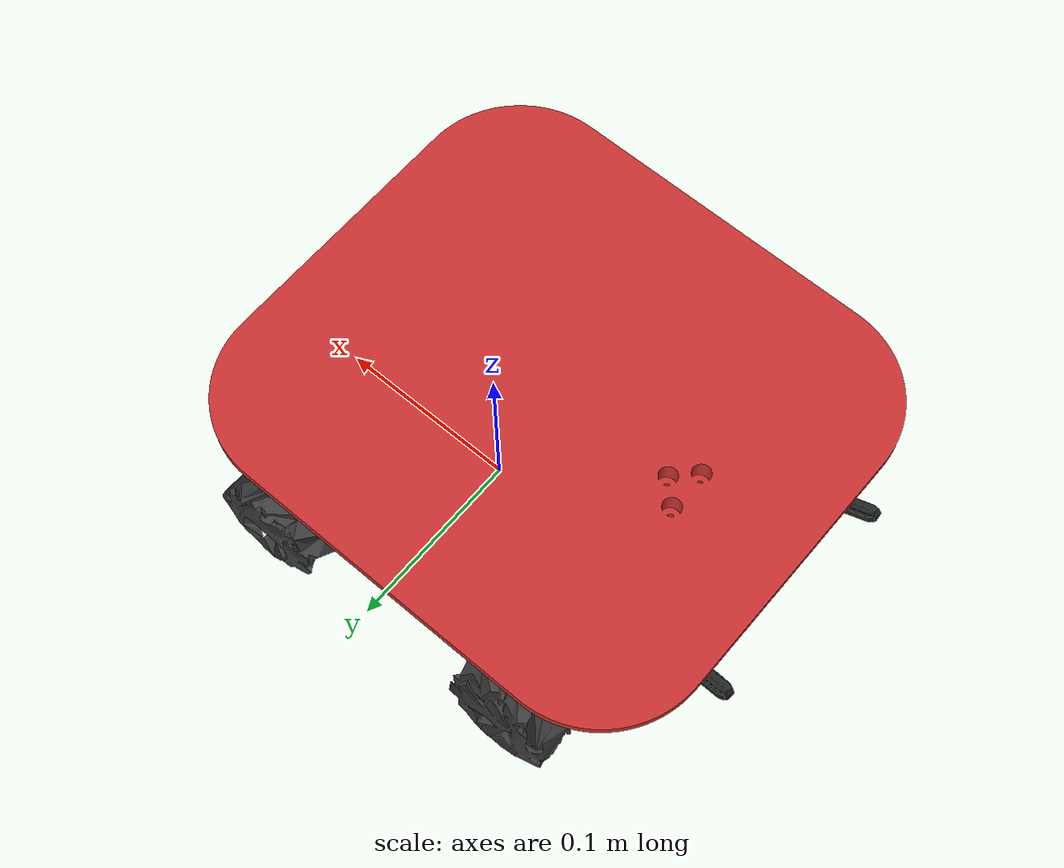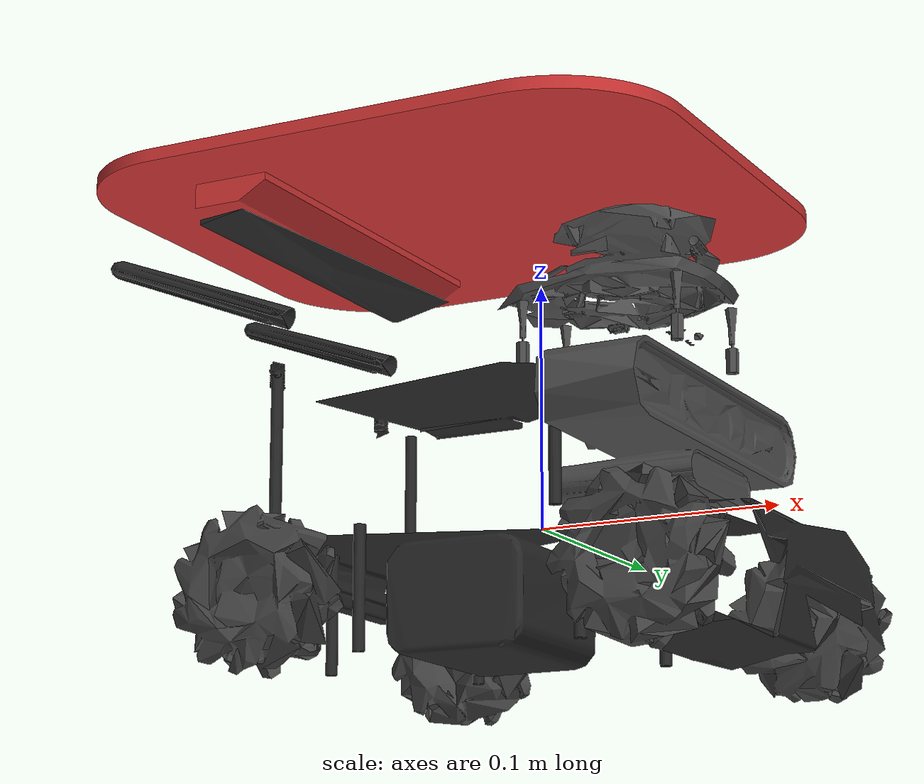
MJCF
<mujoco model="rosmaster_x3">
  <compiler meshdir="meshes" angle="radian"/>

  <asset>
    <mesh name="base"       file="base_link_X3_bracket_only.STL"/>
    <mesh name="wheel_fl"   file="front_left_wheel_X3.STL"/>
    <mesh name="wheel_fr"   file="front_right_wheel_X3.STL"/>
    <mesh name="wheel_bl"   file="back_left_wheel_X3.STL"/>
    <mesh name="wheel_br"   file="back_right_wheel_X3.STL"/>
    <mesh name="camera"     file="camera_link.STL"/>
    <mesh name="laser"      file="laser_link.STL"/>
    <mesh name="pad_mesh"   file="landing_pad.STL"/>

    <material name="chassis"    rgba="0.15 0.15 0.15 1"/>
    <material name="wheel"      rgba="0.25 0.25 0.25 1"/>
    <material name="pad"        rgba="0.8 0.2 0.2 1"/>
    <material name="sensor"     rgba="0.3 0.3 0.3 1"/>
  </asset>

  <worldbody>
    <body name="rover" pos="0 0 0">
      <inertial pos="-0.031 0 0.107" mass="4.6"
                diaginertia="0.03 0.04 0.02"/>

      <!-- Chassis visual (full — with screen holder) -->
      <geom type="mesh" mesh="base" material="chassis"
            contype="0" conaffinity="0"/>

      <!-- Chassis collision box (simplified, covers chassis + bracket) -->
      <geom name="chassis_col" type="box" size="0.15 0.10 0.065"
            pos="0 0 0.065"
            contype="1" conaffinity="1" rgba="0 0 0 0"/>

      <!-- Landing pad mesh (custom 3D printed part) -->
      <!-- Offset: pad hole centers align with crossbar bolt holes -->
      <geom name="pad_visual" type="mesh" mesh="pad_mesh" material="pad"
            pos="-0.0384 0.0004 0.138"
            euler="0 0 3.14159"
            contype="0" conaffinity="0"/>
      <!-- Collision box for the pad top surface (254x254mm) -->
      <geom name="pad_geom" type="box" size="0.127 0.127 0.002"
            pos="-0.0384 0.0004 0.148"
            contype="1" conaffinity="1"
            friction="0.8 0.005 0.0001"
            rgba="0 0 0 0"/>

      <!-- Camera (front of chassis) -->
      <body name="camera_link" pos="0.057105 0.000018 0.03755">
        <geom type="mesh" mesh="camera" material="sensor"
              contype="0" conaffinity="0"/>
      </body>

      <!-- Lidar (top of chassis) -->
      <body name="laser_link" pos="0.0435 0.000053 0.11">
        <geom type="mesh" mesh="laser" material="sensor"
              contype="0" conaffinity="0"/>
      </body>

      <!-- Wheels (visual only, no collision — motion is kinematic) -->
      <body name="wheel_fl" pos="0.08 0.0845 -0.0325">
        <joint name="wheel_fl_joint" type="hinge" axis="0 1 0"/>
        <geom type="mesh" mesh="wheel_fl" material="wheel"
              euler="1.5708 0 0" contype="0" conaffinity="0"/>
      </body>

      <body name="wheel_fr" pos="0.08 -0.0845 -0.0325">
        <joint name="wheel_fr_joint" type="hinge" axis="0 1 0"/>
        <geom type="mesh" mesh="wheel_fr" material="wheel"
              euler="1.5708 0 0" contype="0" conaffinity="0"/>
      </body>

      <body name="wheel_bl" pos="-0.08 0.0845 -0.0325">
        <joint name="wheel_bl_joint" type="hinge" axis="0 1 0"/>
        <geom type="mesh" mesh="wheel_bl" material="wheel"
              euler="1.5708 0 0" contype="0" conaffinity="0"/>
      </body>

      <body name="wheel_br" pos="-0.08 -0.0845 -0.0325">
        <joint name="wheel_br_joint" type="hinge" axis="0 1 0"/>
        <geom type="mesh" mesh="wheel_br" material="wheel"
              euler="1.5708 0 0" contype="0" conaffinity="0"/>
      </body>
    </body>
  </worldbody>
</mujoco>
